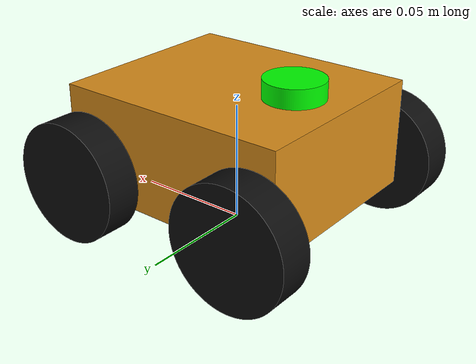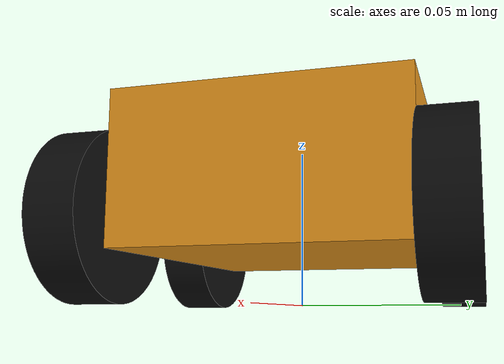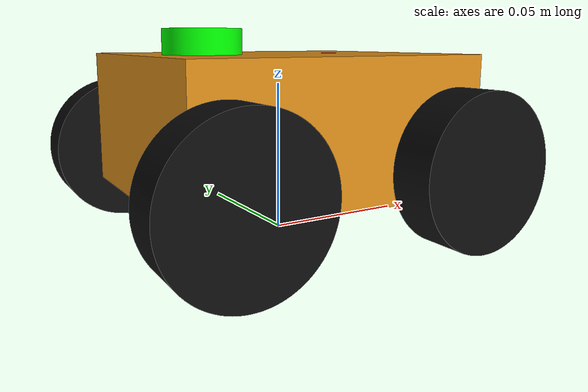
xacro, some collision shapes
<?xml version='1.0' encoding='utf-8'?>
<robot name="amr" xmlns:xacro="http://www.ros.org/wiki/xacro">

  <!-- Include materials -->
  <xacro:include filename="$(find amr_description)/urdf/materials.xacro"/>

  <!-- Include gazebo -->
  <xacro:include filename="$(find amr_description)/urdf/gazebo.xacro"/>

    <link name="base_footprint"/>

    <link name="base_link">
        <inertial>
            <origin xyz="-0.0006885491492564709 0.0 0.027166633468263507" rpy="0.0 0.0 0.0" />
            <mass value="1.3323074595986184" />
            <inertia ixx="0.0006506373798299638" iyy="0.0010832083859234798" izz="0.0015870876476710158" ixy="-1.4279066817834973e-18" iyz="0.0" ixz="1.0665856287759598e-05" />
        </inertial>
        <visual name="base_link_visual">
            <origin xyz="0.0 0.0 0.0" rpy="0.0 0.0 0.0" />
            <geometry>
                <mesh filename="file://$(find amr_description)/meshes/base_link.stl" scale="0.001 0.001 0.001" />
            </geometry>
            <material name="base_link"/>
        </visual>
        <collision name="base_link_collision">
            <origin xyz="0.0 0.0 0.0375" rpy="0.0 0.0 0.0" />
            <geometry>
                <box size="0.10 0.085 0.045"/>
            </geometry>
        </collision>
    </link>
    <link name="f_wheel_r">
        <inertial>
            <origin xyz="0.0 0.0 0.0075" rpy="0.0 -0.0 0.0" />
            <mass value="0.027390760948486005" />
            <inertia ixx="4.793383165985085e-06" iyy="4.793383165984855e-06" izz="8.559612796401754e-06" ixy="0.0" iyz="0.0" ixz="-6.776263578034403e-21" />
        </inertial>
        <visual name="f_wheel_r_visual">
            <origin xyz="-0.04 -0.025 -0.0425" rpy="-1.5707963267948966 -0.0 0.0" />
            <geometry>
                <mesh filename="file://$(find amr_description)/meshes/f_wheel_r.stl" scale="0.001 0.001 0.001" />
            </geometry>
            <material name="Wheels"/>
        </visual>
        <collision name="f_wheel_r_collision">
            <origin xyz="0 0 0.0075" rpy="0 -0.0 0.0" />
            <geometry>
                <cylinder radius="0.025" length="0.015"/>
            </geometry>
        </collision>
    </link>
    <link name="f_wheel_l">
        <inertial>
            <origin xyz="0.0 0.0 0.0075" rpy="0.0 -0.0 0.0" />
            <mass value="0.027390760948486005" />
            <inertia ixx="4.793383165985099e-06" iyy="4.7933831659848684e-06" izz="8.559612796401754e-06" ixy="0.0" iyz="-6.776263578034403e-21" ixz="-6.776263578034403e-21" />
        </inertial>
        <visual name="f_wheel_l_visual">
            <origin xyz="-0.04 0.025 -0.0425" rpy="1.5707963267948966 -0.0 0.0" />
            <geometry>
                <mesh filename="file://$(find amr_description)/meshes/f_wheel_l.stl" scale="0.001 0.001 0.001" />
            </geometry>
            <material name="Wheels"/>
        </visual>
        <collision name="f_wheel_l_collision">
            <origin xyz="0 0 0.0075" rpy="0 -0.0 0.0" />
            <geometry>
                <cylinder radius="0.025" length="0.015"/>
            </geometry>
        </collision>
    </link>
    <link name="b_wheel_r">
        <inertial>
            <origin xyz="-8.881784197001253e-18 0.0 0.0075" rpy="0.0 -0.0 0.0" />
            <mass value="0.027390760948486005" />
            <inertia ixx="4.793383165985085e-06" iyy="4.793383165984841e-06" izz="8.559612796401754e-06" ixy="-6.776263578034403e-21" iyz="0.0" ixz="-6.776263578034403e-21" />
        </inertial>
        <visual name="b_wheel_r_visual">
            <origin xyz="0.04 -0.025 -0.0425" rpy="-1.5707963267948966 -0.0 0.0" />
            <geometry>
                <mesh filename="file://$(find amr_description)/meshes/b_wheel_r.stl" scale="0.001 0.001 0.001" />
            </geometry>
            <material name="Wheels"/>
        </visual>
        <collision name="b_wheel_r_collision">
            <origin xyz="0 0 0.0075" rpy="0 -0.0 0.0" />
            <geometry>
                <cylinder radius="0.025" length="0.015"/>
            </geometry>
        </collision>
    </link>
    <link name="b_wheel_l">
        <inertial>
            <origin xyz="-8.881784197001253e-18 0.0 0.0075" rpy="0.0 -0.0 0.0" />
            <mass value="0.027390760948486005" />
            <inertia ixx="4.793383165985099e-06" iyy="4.793383165984841e-06" izz="8.559612796401754e-06" ixy="6.776263578034403e-21" iyz="-6.776263578034403e-21" ixz="-1.3552527156068805e-20" />
        </inertial>
        <visual name="b_wheel_l_visual">
            <origin xyz="0.04 0.025 -0.0425" rpy="1.5707963267948966 -0.0 0.0" />
            <geometry>
                <mesh filename="file://$(find amr_description)/meshes/b_wheel_l.stl" scale="0.001 0.001 0.001" />
            </geometry>
            <material name="Wheels"/>
        </visual>
        <collision name="b_wheel_l_collision">
            <origin xyz="0 0 0.0075" rpy="0 -0.0 0.0" />
            <geometry>
                <cylinder radius="0.025" length="0.015"/>
            </geometry>
        </collision>
    </link>

<!-- Camera -->
    <link name="camera_link">
        <inertial>
            <origin xyz="2.1144401675929903e-05 -2.0784716164913716e-18 0.005000000000000009" rpy="0.0 -0.0 0.0" />
            <mass value="0.02186537558266994" />
            <inertia ixx="1.640264964297022e-06" iyy="3.5588437804210445e-07" izz="1.6574154808891354e-06" ixy="2.423405746323952e-19" iyz="-1.3944401189291966e-21" ixz="3.3881317890172014e-21" />
        </inertial>
        <visual name="camera_link_visual">
            <origin xyz="-0.01916700333333333 1.1102230246251566e-18 -0.05" rpy="0.0 -0.0 0.0" />
            <geometry>
                <mesh filename="file://$(find amr_description)/meshes/camera_link.stl" scale="0.001 0.001 0.001" />
            </geometry>
            <material name="camera_link"/>
        </visual>
        <collision name="camera_link_collision">
            <origin xyz="0 0 0.005" rpy="0.0 -0.0 0.0" />
            <geometry>
                <box size="0.011 0.030 0.010"/>
            </geometry>
        </collision>
    </link>

<!--Lidar-->
    <link name="lidar_link">
        <inertial>
            <origin xyz="0.0 4.996003610813204e-18 0.003999999999999995" rpy="0.0 -0.0 0.0" />
            <mass value="0.030826877913349836" />
            <inertia ixx="1.368584934028017e-06" iyy="1.3685849340281254e-06" izz="2.4083498369804205e-06" ixy="7.52316384526264e-37" iyz="-1.0458300891968961e-21" ixz="-6.776263578034403e-21" />
        </inertial>
        <visual name="lidar_link_visual">
            <origin xyz="0.0 4.996003610813204e-18 -0.037000000000000005" rpy="0.0 -0.0 0.0" />
            <geometry>
                <mesh filename="file://$(find amr_description)/meshes/lidar_link.stl" scale="0.001 0.001 0.001" />
            </geometry>
            <material name="lidar_link"/>
        </visual>
        <collision name="lidar_link_collision">
            <origin xyz="0.0 0.0 0.004" rpy="0.0 -0.0 0.0" />
            <geometry>
                <cylinder radius="0.0125" length="0.008"/>
            </geometry>
        </collision>
    </link>

<!-- Joints -->

    <joint name="base_joint" type="fixed">
        <origin xyz="0.0 0.0 0.0" rpy="0.0 0.0 0.0" />
        <parent link="base_footprint" />
        <child link="base_link" />
    </joint>
    <joint name="f_wheel_r_revolute" type="continuous">
        <origin xyz="0.04 -0.0425 0.025" rpy="1.5707963267948966 -0.0 0.0" />
        <parent link="base_link" />
        <child link="f_wheel_r" />
        <axis xyz="0.0 0.0 -1.0" />
    </joint>
    <joint name="f_wheel_l_revolute" type="continuous">
        <origin xyz="0.04 0.0425 0.025" rpy="-1.5707963267948966 -0.0 0.0" />
        <parent link="base_link" />
        <child link="f_wheel_l" />
        <axis xyz="0.0 0.0 1.0" />
    </joint>
    <joint name="b_wheel_l_revolute" type="continuous">
        <origin xyz="-0.04 0.0425 0.025" rpy="-1.5707963267948966 -0.0 0.0" />
        <parent link="base_link" />
        <child link="b_wheel_l" />
        <axis xyz="0.0 0.0 1.0" />
    </joint>
    <joint name="b_wheel_r_revolute" type="continuous">
        <origin xyz="-0.04 -0.0425 0.025" rpy="1.5707963267948966 -0.0 0.0" />
        <parent link="base_link" />
        <child link="b_wheel_r" />
        <axis xyz="0.0 0.0 -1.0" />
    </joint>
    <joint name="camera_rotation" type="revolute">
        <origin xyz="0.01916667 0.0 0.05" rpy="0.0 -0.0 0.0" />
        <parent link="base_link" />
        <child link="camera_link" />
        <axis xyz="0.0 0.0 1.0" />
        <limit effort="0.0" velocity="0.0" lower="-1.5707963267948966" upper="1.5707963267948966"/>
    </joint>
    <joint name="lidar_rotation" type="fixed">
        <origin xyz="-0.0275 0.0 0.06" rpy="0.0 -0.0 0.0" />
        <parent link="base_link" />
        <child link="lidar_link" />
        <axis xyz="0.0 0.0 1.0" />
    </joint>

</robot>

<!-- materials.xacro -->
<robot xmlns:xacro="http://www.ros.org/wiki/xacro">

    <!-- ================= COLORS ================= -->

    <material name="Wheels">
        <color rgba="0.05 0.05 0.05 1"/>
    </material>

    <material name="base_link">
        <color rgba="0.85 0.55 0.1 1"/>
    </material>

    <material name="camera_link">
        <color rgba="1 0 0 1"/>
    </material>

    <material name="lidar_link">
        <color rgba="0 1 0 1"/>
    </material>

</robot>

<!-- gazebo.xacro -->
<robot name="amr" xmlns:xacro="http://www.ros.org/wiki/xacro" >

<xacro:property name="base_link" value="Gazebo/Orange" />
<xacro:property name="wheels" value="Gazebo/Black" />
<xacro:property name="lidar_link" value="Gazebo/Red" />
<xacro:property name="camera_link" value="Gazebo/Blue" />

<gazebo reference="base_link">
  <material>${base_link}</material>
  <mu1>0.2</mu1>
  <mu2>0.2</mu2>
  <self_collide>true</self_collide>
  <gravity>true</gravity>
</gazebo>

<gazebo reference="lidar_link">
  <material>${lidar_link}</material>
  <mu1>0.2</mu1>
  <mu2>0.2</mu2>
  <self_collide>true</self_collide>
</gazebo>

<gazebo reference="f_wheel_r">
  <material>${wheels}</material>
  <mu1>1</mu1>
  <mu2>1</mu2>
  <self_collide>true</self_collide>
</gazebo>

<gazebo reference="f_wheel_l">
  <material>${wheels}</material>
  <mu1>1</mu1>
  <mu2>1</mu2>
  <self_collide>true</self_collide>
</gazebo>

<gazebo reference="b_wheel_r">
  <material>${wheels}</material>
  <mu1>1</mu1>
  <mu2>1</mu2>
  <self_collide>true</self_collide>
</gazebo>

<gazebo reference="b_wheel_l">
  <material>${wheels}</material>
  <mu1>1</mu1>
  <mu2>1</mu2>
  <self_collide>true</self_collide>
</gazebo>

<gazebo reference="camera_link">
  <material>${camera_link}</material>
  <mu1>0.2</mu1>
  <mu2>0.2</mu2>
  <self_collide>true</self_collide>
</gazebo>

<gazebo>
    <plugin filename="gz-sim-diff-drive-system" name="gz::sim::systems::DiffDrive">
        <left_joint>f_wheel_l_revolute</left_joint>
        <left_joint>b_wheel_l_revolute</left_joint>
        <right_joint>f_wheel_r_revolute</right_joint>
        <right_joint>b_wheel_r_revolute</right_joint>

        <wheel_separation>0.085</wheel_separation>
        <wheel_radius>0.025</wheel_radius>

        <max_linear_acceleration>1.0</max_linear_acceleration>
        <max_angular_acceleration>2.0</max_angular_acceleration>

        <topic>cmd_vel</topic>
        <tf_topic>tf</tf_topic>
        <odom_topic>odom</odom_topic>
        <frame_id>odom</frame_id>
        <child_frame_id>base_link</child_frame_id>
        <odom_publisher_frequency>50</odom_publisher_frequency>
    </plugin>

    <plugin filename="gz-sim-joint-state-publisher-system" name="gz::sim::systems::JointStatePublisher">
        <topic>joint_states</topic>
        <joint_name>f_wheel_r_revolute</joint_name>
        <joint_name>f_wheel_l_revolute</joint_name>
        <joint_name>b_wheel_r_revolute</joint_name>
        <joint_name>b_wheel_l_revolute</joint_name>

        <joint_name>camera_rotation</joint_name>
    </plugin>
</gazebo>

<gazebo>
    <plugin filename="gz-sim-sensors-system" name="gz::sim::systems::Sensors">
    </plugin>
</gazebo>

<gazebo reference="lidar_link">
    <sensor name="laser" type="gpu_lidar">
        <pose> 0 0 0 0 0 0 </pose>
        <always_on>true</always_on>
        <visualize>true</visualize>
        <update_rate>30</update_rate>
        <topic>scan</topic>
        <gz_frame_id>lidar_link</gz_frame_id>
        <lidar>
        <scan>
            <horizontal>
            <samples>360</samples>
            <min_angle>-3.14</min_angle>
            <max_angle>3.14</max_angle>
            </horizontal>
        </scan>
        <range>
            <min>0.3</min>
            <max>12</max>
        </range>
        </lidar>
    </sensor>
</gazebo>

<gazebo reference="camera_link">
    <sensor name="camera" type="camera">
        <pose>0 0 0 0 0 0</pose>
        <topic>camera/image_raw</topic>
        <update_rate>30</update_rate>
        <gz_frame_id>camera_link</gz_frame_id>
        <camera>
            <horizontal_fov>1.047</horizontal_fov> <image>
                <width>640</width>
                <height>480</height>
                <format>R8G8B8</format>
            </image>
            <clip>
                <near>0.1</near>
                <far>100</far>
            </clip>
        </camera>
        <visualize>true</visualize>
    </sensor>
</gazebo>

<gazebo reference="base_link">
  <sensor name="imu_sensor" type="imu">
    <always_on>1</always_on>
    <update_rate>50</update_rate>
    <visualize>true</visualize>
    <topic>imu</topic>
    <gz_frame_id>base_link</gz_frame_id>
  </sensor>
</gazebo>

<gazebo>
  <plugin filename="gz-sim-imu-system" name="gz::sim::systems::Imu">
  </plugin>
</gazebo>

</robot>
